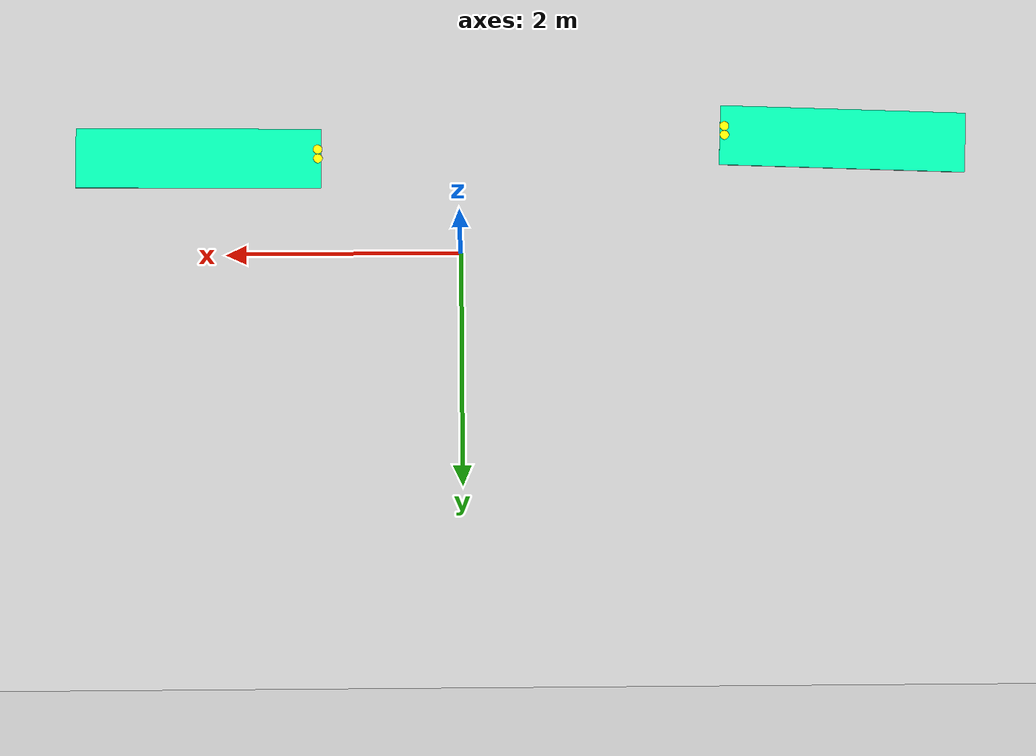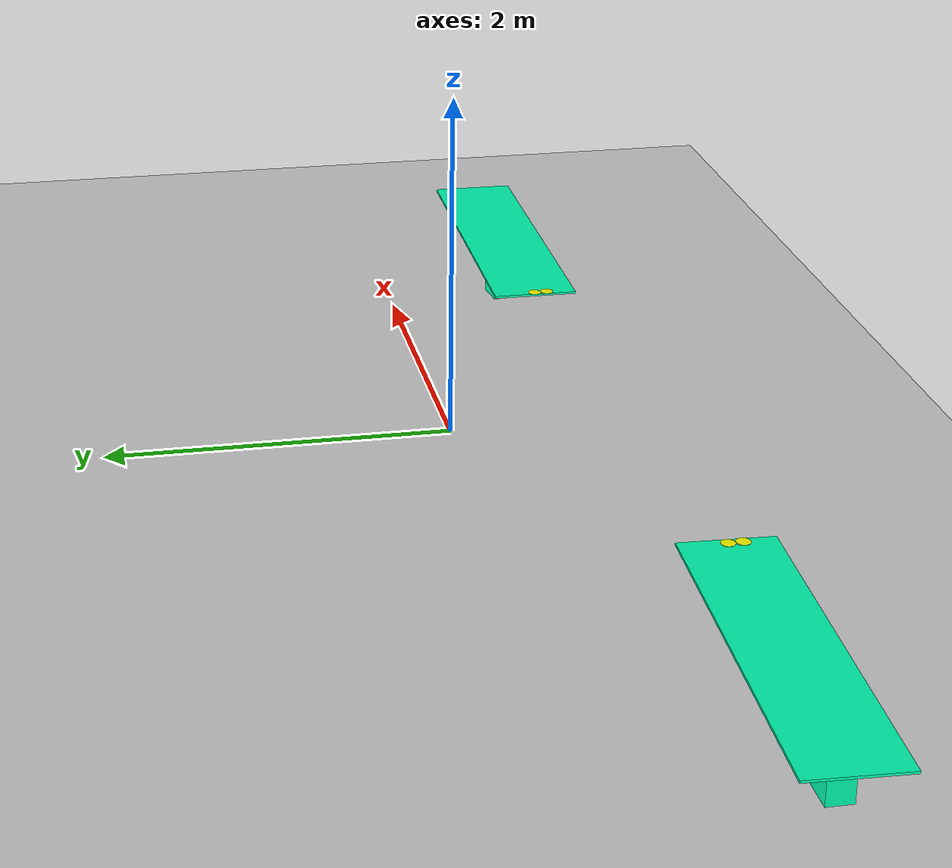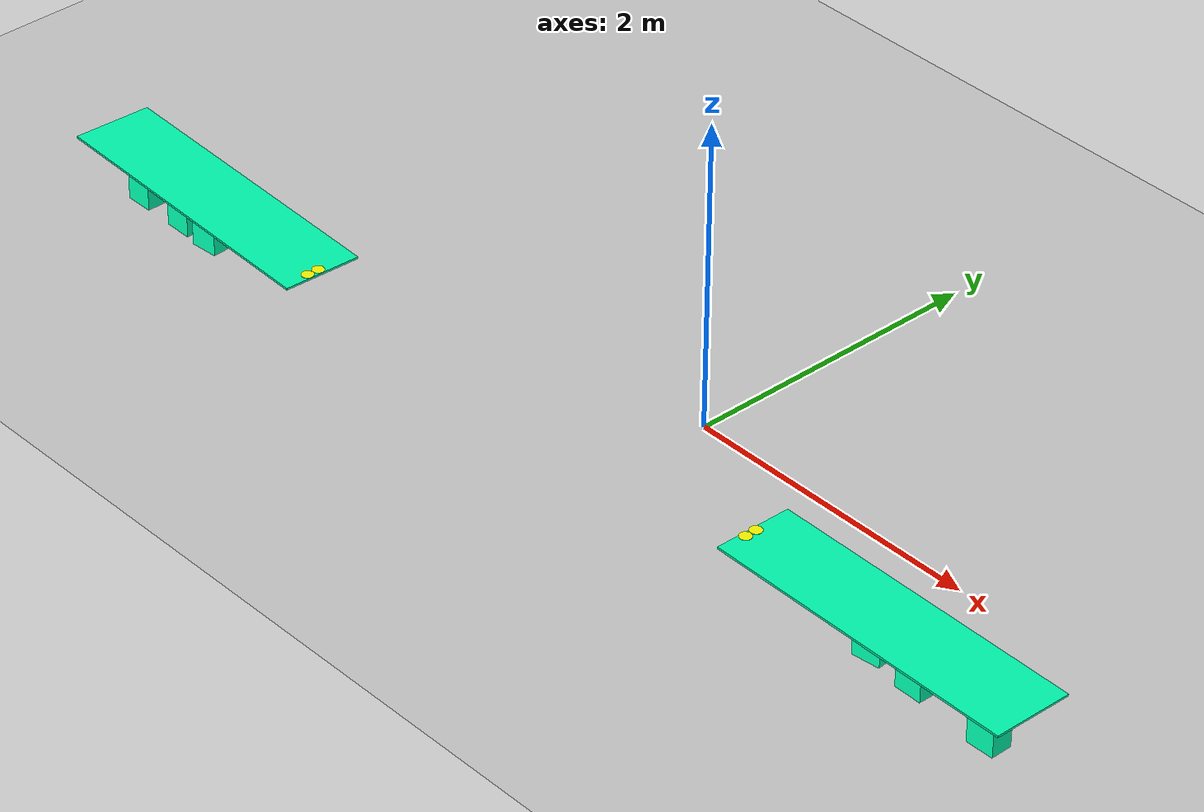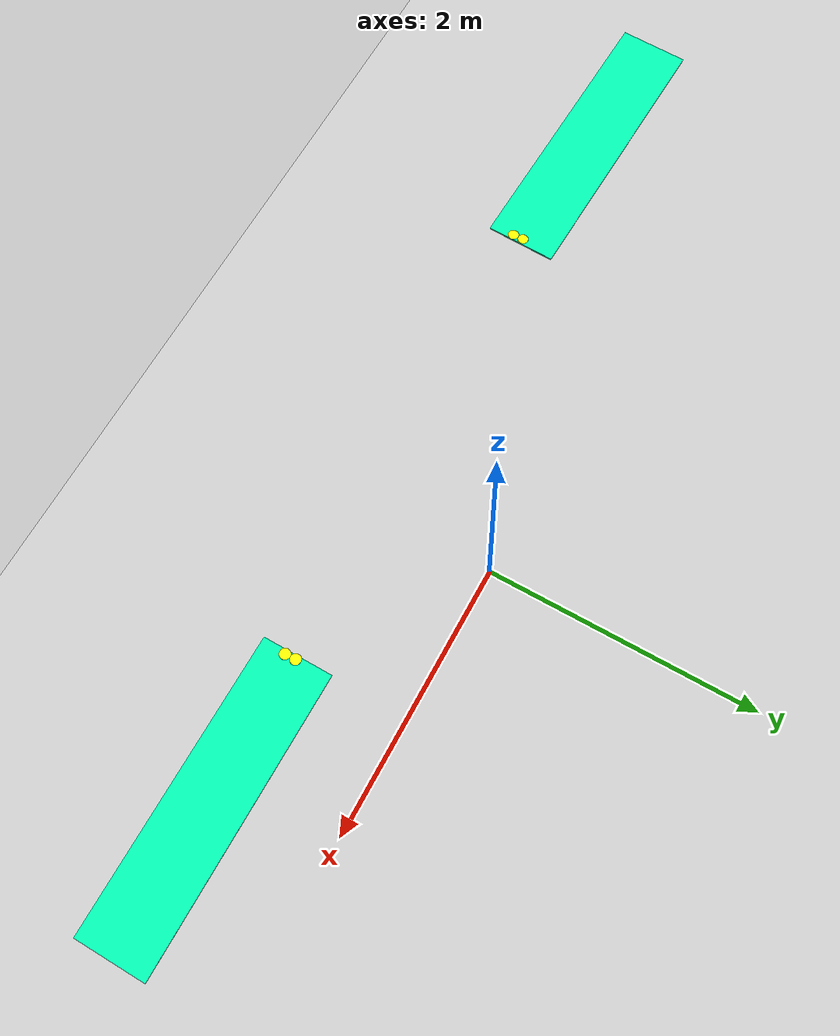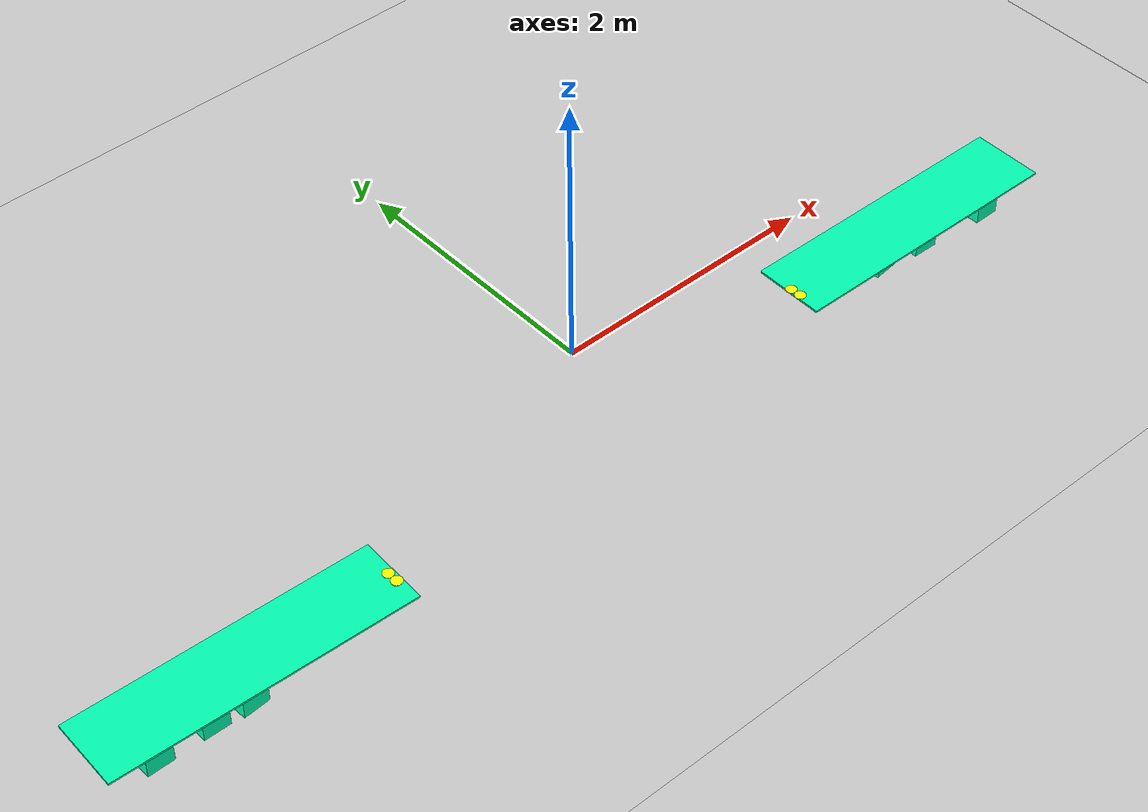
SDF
<sdf version="1.6">
 <world name="default">
  <light name="sun" type="directional">
   <pose>0 0 10 0 -0 0</pose>
   <diffuse>0.8 0.8 0.8 1</diffuse>
   <specular>0.1 0.1 0.1 1</specular>
   <attenuation>
    <range>1000</range>
    <constant>0.9</constant>
    <linear>0.01</linear>
    <quadratic>0.001</quadratic>
   </attenuation>
   <direction>-0.5 0.5 -1</direction>
  </light>
  <model name="ground_plane">
   <static>1</static>
   <link name="link">
    <collision name="collision">
     <geometry><plane><normal>0 0 1</normal><size>100 100</size></plane></geometry>
     <surface><friction><ode><mu>100</mu><mu2>50</mu2></ode></friction></surface>
    </collision>
    <visual name="visual">
     <cast_shadows>0</cast_shadows>
     <geometry><plane><normal>0 0 1</normal><size>100 100</size></plane></geometry>
     <material>
      <script><uri>file://media/materials/scripts/gazebo.material</uri><name>Gazebo/Grey</name></script>
     </material>
    </visual>
   </link>
  </model>
  <gravity>0 0 -9.8</gravity>
  <magnetic_field>6e-06 2.3e-05 -4.2e-05</magnetic_field>
  <atmosphere type="adiabatic"/>
  <physics name="default_physics" default="0" type="ode">
   <max_step_size>0.001</max_step_size>
   <real_time_factor>1</real_time_factor>
   <real_time_update_rate>1000</real_time_update_rate>
  </physics>
  <scene><ambient>0.4 0.4 0.4 1</ambient><background>0.7 0.7 0.7 1</background><shadows>1</shadows></scene>
  <spherical_coordinates>
   <surface_model>EARTH_WGS84</surface_model>
   <latitude_deg>0</latitude_deg>
   <longitude_deg>0</longitude_deg>
   <elevation>0</elevation>
   <heading_deg>0</heading_deg>
  </spherical_coordinates>
  <model name="coin">
   <link name="link">
    <pose>-0.752152 -0.656871 1.73249 0 -0 0</pose>
    <inertial>
     <mass>1.24018e-05</mass>
     <inertia>
      <ixx>-2.61911e-10</ixx>
      <ixy>0</ixy>
      <ixz>0</ixz>
      <iyy>-2.61911e-10</iyy>
      <iyz>0</iyz>
      <izz>8.9216e-09</izz>
     </inertia>
    </inertial>
    <visual name="visual">
     <geometry><cylinder><radius>0.0390587</radius><length>0.00202682</length></cylinder></geometry>
     <material>
      <script><name>Gazebo/Grey</name><uri>file://media/materials/scripts/gazebo.material</uri></script>
      <ambient>1 1 0 0</ambient>
      <diffuse>1 1 0 0</diffuse>
      <specular>1 1 0.01 0</specular>
      <emissive>1 1 0 0</emissive>
      <shader type="vertex"><normal_map>__default__</normal_map></shader>
     </material>
    </visual>
    <collision name="collision">
     <geometry><cylinder><radius>0.039059</radius><length>0.002027</length></cylinder></geometry>
     <surface>
      <friction>
       <ode><mu>1</mu><mu2>1</mu2><fdir1>0 0 0</fdir1><slip1>0</slip1><slip2>0</slip2></ode>
       <torsional>
        <coefficient>1</coefficient>
        <patch_radius>0</patch_radius>
        <surface_radius>0</surface_radius>
        <use_patch_radius>1</use_patch_radius>
        <ode><slip>0</slip></ode>
       </torsional>
      </friction>
      <bounce><restitution_coefficient>0</restitution_coefficient><threshold>1e+06</threshold></bounce>
      <contact>
       <collide_without_contact>0</collide_without_contact>
       <collide_without_contact_bitmask>1</collide_without_contact_bitmask>
       <collide_bitmask>1</collide_bitmask>
       <ode>
        <soft_cfm>0</soft_cfm>
        <soft_erp>0.2</soft_erp>
        <kp>1e+13</kp>
        <kd>1</kd>
        <max_vel>0.01</max_vel>
        <min_depth>0</min_depth>
       </ode>
       <bullet>
        <split_impulse>1</split_impulse>
        <split_impulse_penetration_threshold>-0.01</split_impulse_penetration_threshold>
        <soft_cfm>0</soft_cfm>
        <soft_erp>0.2</soft_erp>
        <kp>1e+13</kp>
        <kd>1</kd>
       </bullet>
      </contact>
     </surface>
    </collision>
   </link>
   <static>0</static>
   <pose>1.96427 -0.189458 -1.38894 -6.1e-05 -4.3e-05 -1.7e-05</pose>
  </model>
  <model name="coin_clone">
   <link name="link">
    <pose>-0.752152 -0.656871 1.73249 0 -0 0</pose>
    <inertial>
     <mass>1.24018e-05</mass>
     <inertia>
      <ixx>-2.61911e-10</ixx>
      <ixy>0</ixy>
      <ixz>0</ixz>
      <iyy>-2.61911e-10</iyy>
      <iyz>0</iyz>
      <izz>8.9216e-09</izz>
     </inertia>
    </inertial>
    <visual name="visual">
     <geometry><cylinder><radius>0.0390587</radius><length>0.00202682</length></cylinder></geometry>
     <material>
      <script><name>Gazebo/Grey</name><uri>file://media/materials/scripts/gazebo.material</uri></script>
      <ambient>1 1 0 0</ambient>
      <diffuse>1 1 0 0</diffuse>
      <specular>1 1 0.01 0</specular>
      <emissive>1 1 0 0</emissive>
      <shader type="vertex"><normal_map>__default__</normal_map></shader>
     </material>
    </visual>
    <collision name="collision">
     <geometry><cylinder><radius>0.039059</radius><length>0.002027</length></cylinder></geometry>
     <surface>
      <friction>
       <ode><mu>1</mu><mu2>1</mu2><fdir1>0 0 0</fdir1><slip1>0</slip1><slip2>0</slip2></ode>
       <torsional>
        <coefficient>1</coefficient>
        <patch_radius>0</patch_radius>
        <surface_radius>0</surface_radius>
        <use_patch_radius>1</use_patch_radius>
        <ode><slip>0</slip></ode>
       </torsional>
      </friction>
      <bounce><restitution_coefficient>0</restitution_coefficient><threshold>1e+06</threshold></bounce>
      <contact>
       <collide_without_contact>0</collide_without_contact>
       <collide_without_contact_bitmask>1</collide_without_contact_bitmask>
       <collide_bitmask>1</collide_bitmask>
       <ode>
        <soft_cfm>0</soft_cfm>
        <soft_erp>0.2</soft_erp>
        <kp>1e+13</kp>
        <kd>1</kd>
        <max_vel>0.01</max_vel>
        <min_depth>0</min_depth>
       </ode>
       <bullet>
        <split_impulse>1</split_impulse>
        <split_impulse_penetration_threshold>-0.01</split_impulse_penetration_threshold>
        <soft_cfm>0</soft_cfm>
        <soft_erp>0.2</soft_erp>
        <kp>1e+13</kp>
        <kd>1</kd>
       </bullet>
      </contact>
     </surface>
    </collision>
   </link>
   <static>0</static>
   <pose>1.96197 -0.111284 -1.38894 -3.8e-05 -2.8e-05 -1.4e-05</pose>
  </model>
  <model name="box_init_base_2_weight">
   <link name="link">
    <pose>0.033322 0.022861 0.129335 0 -0 0</pose>
    <inertial>
     <mass>5.63888</mass>
     <inertia>
      <ixx>0.174337</ixx>
      <ixy>0</ixy>
      <ixz>0</ixz>
      <iyy>0.192045</iyy>
      <iyz>0</iyz>
      <izz>0.023962</izz>
     </inertia>
    </inertial>
    <visual name="visual">
     <geometry><box><size>0.186419 0.138346 0.335251</size></box></geometry>
     <material>
      <script><name>Gazebo/Grey</name><uri>file://media/materials/scripts/gazebo.material</uri></script>
      <ambient>0 1 0.3 1</ambient>
      <diffuse>0 1 0.7 1</diffuse>
      <specular>0 1 0.01 1</specular>
      <emissive>0 1 0 1</emissive>
      <shader type="vertex"><normal_map>__default__</normal_map></shader>
     </material>
    </visual>
    <collision name="collision">
     <geometry><box><size>0.186419 0.138346 0.335251</size></box></geometry>
     <surface>
      <friction>
       <ode><mu>1</mu><mu2>1</mu2><fdir1>0 0 0</fdir1><slip1>0</slip1><slip2>0</slip2></ode>
       <torsional>
        <coefficient>1</coefficient>
        <patch_radius>0</patch_radius>
        <surface_radius>0</surface_radius>
        <use_patch_radius>1</use_patch_radius>
        <ode><slip>0</slip></ode>
       </torsional>
      </friction>
      <bounce><restitution_coefficient>0</restitution_coefficient><threshold>1e+06</threshold></bounce>
      <contact>
       <collide_without_contact>0</collide_without_contact>
       <collide_without_contact_bitmask>1</collide_without_contact_bitmask>
       <collide_bitmask>1</collide_bitmask>
       <ode>
        <soft_cfm>0</soft_cfm>
        <soft_erp>0.2</soft_erp>
        <kp>1e+13</kp>
        <kd>1</kd>
        <max_vel>0.01</max_vel>
        <min_depth>0</min_depth>
       </ode>
       <bullet>
        <split_impulse>1</split_impulse>
        <split_impulse_penetration_threshold>-0.01</split_impulse_penetration_threshold>
        <soft_cfm>0</soft_cfm>
        <soft_erp>0.2</soft_erp>
        <kp>1e+13</kp>
        <kd>1</kd>
       </bullet>
      </contact>
     </surface>
    </collision>
   </link>
   <static>0</static>
   <pose>2.05521 -0.764642 0.038291 -3e-06 -2e-06 0.114904</pose>
  </model>
  <model name="box_init_base_2_weight_clone">
   <link name="link">
    <pose>0.033322 0.022861 0.129335 0 -0 0</pose>
    <inertial>
     <mass>5.63888</mass>
     <inertia>
      <ixx>0.174337</ixx>
      <ixy>0</ixy>
      <ixz>0</ixz>
      <iyy>0.192045</iyy>
      <iyz>0</iyz>
      <izz>0.023962</izz>
     </inertia>
    </inertial>
    <visual name="visual">
     <geometry><box><size>0.186419 0.138346 0.335251</size></box></geometry>
     <material>
      <script><name>Gazebo/Grey</name><uri>file://media/materials/scripts/gazebo.material</uri></script>
      <ambient>0 1 0.3 1</ambient>
      <diffuse>0 1 0.7 1</diffuse>
      <specular>0 1 0.01 1</specular>
      <emissive>0 1 0 1</emissive>
      <shader type="vertex"><normal_map>__default__</normal_map></shader>
     </material>
    </visual>
    <collision name="collision">
     <geometry><box><size>0.186419 0.138346 0.335251</size></box></geometry>
     <surface>
      <friction>
       <ode><mu>1</mu><mu2>1</mu2><fdir1>0 0 0</fdir1><slip1>0</slip1><slip2>0</slip2></ode>
       <torsional>
        <coefficient>1</coefficient>
        <patch_radius>0</patch_radius>
        <surface_radius>0</surface_radius>
        <use_patch_radius>1</use_patch_radius>
        <ode><slip>0</slip></ode>
       </torsional>
      </friction>
      <bounce><restitution_coefficient>0</restitution_coefficient><threshold>1e+06</threshold></bounce>
      <contact>
       <collide_without_contact>0</collide_without_contact>
       <collide_without_contact_bitmask>1</collide_without_contact_bitmask>
       <collide_bitmask>1</collide_bitmask>
       <ode>
        <soft_cfm>0</soft_cfm>
        <soft_erp>0.2</soft_erp>
        <kp>1e+13</kp>
        <kd>1</kd>
        <max_vel>0.01</max_vel>
        <min_depth>0</min_depth>
       </ode>
       <bullet>
        <split_impulse>1</split_impulse>
        <split_impulse_penetration_threshold>-0.01</split_impulse_penetration_threshold>
        <soft_cfm>0</soft_cfm>
        <soft_erp>0.2</soft_erp>
        <kp>1e+13</kp>
        <kd>1</kd>
       </bullet>
      </contact>
     </surface>
    </collision>
   </link>
   <static>0</static>
   <pose>2.40391 -0.793136 0.03829 2e-05 -7e-06 -0.013028</pose>
  </model>
  <model name="box_init_base_2_weight_clone_0">
   <link name="link">
    <pose>0.033322 0.022861 0.129335 0 -0 0</pose>
    <inertial>
     <mass>5.63888</mass>
     <inertia>
      <ixx>0.174337</ixx>
      <ixy>0</ixy>
      <ixz>0</ixz>
      <iyy>0.192045</iyy>
      <iyz>0</iyz>
      <izz>0.023962</izz>
     </inertia>
    </inertial>
    <visual name="visual">
     <geometry><box><size>0.186419 0.138346 0.335251</size></box></geometry>
     <material>
      <script><name>Gazebo/Grey</name><uri>file://media/materials/scripts/gazebo.material</uri></script>
      <ambient>0 1 0.3 1</ambient>
      <diffuse>0 1 0.7 1</diffuse>
      <specular>0 1 0.01 1</specular>
      <emissive>0 1 0 1</emissive>
      <shader type="vertex"><normal_map>__default__</normal_map></shader>
     </material>
    </visual>
    <collision name="collision">
     <geometry><box><size>0.186419 0.138346 0.335251</size></box></geometry>
     <surface>
      <friction>
       <ode><mu>1</mu><mu2>1</mu2><fdir1>0 0 0</fdir1><slip1>0</slip1><slip2>0</slip2></ode>
       <torsional>
        <coefficient>1</coefficient>
        <patch_radius>0</patch_radius>
        <surface_radius>0</surface_radius>
        <use_patch_radius>1</use_patch_radius>
        <ode><slip>0</slip></ode>
       </torsional>
      </friction>
      <bounce><restitution_coefficient>0</restitution_coefficient><threshold>1e+06</threshold></bounce>
      <contact>
       <collide_without_contact>0</collide_without_contact>
       <collide_without_contact_bitmask>1</collide_without_contact_bitmask>
       <collide_bitmask>1</collide_bitmask>
       <ode>
        <soft_cfm>0</soft_cfm>
        <soft_erp>0.2</soft_erp>
        <kp>1e+13</kp>
        <kd>1</kd>
        <max_vel>0.01</max_vel>
        <min_depth>0</min_depth>
       </ode>
       <bullet>
        <split_impulse>1</split_impulse>
        <split_impulse_penetration_threshold>-0.01</split_impulse_penetration_threshold>
        <soft_cfm>0</soft_cfm>
        <soft_erp>0.2</soft_erp>
        <kp>1e+13</kp>
        <kd>1</kd>
       </bullet>
      </contact>
     </surface>
    </collision>
   </link>
   <static>0</static>
   <pose>2.96555 -0.836134 0.03829 2e-06 -6e-06 0.009809</pose>
  </model>
  <model name="box_init_surface_1">
   <link name="link">
    <pose>0.030718 0.14752 0.313267 0 -0 0</pose>
    <inertial>
     <mass>9.21638</mass>
     <inertia><ixx>0.070657</ixx><ixy>0</ixy><ixz>0</ixz><iyy>4.25812</iyy><iyz>0</iyz><izz>4.32792</izz></inertia>
    </inertial>
    <visual name="visual">
     <geometry><box><size>2.08452 0.51282 0.013219</size></box></geometry>
     <material>
      <script><name>Gazebo/Grey</name><uri>file://media/materials/scripts/gazebo.material</uri></script>
      <ambient>0 1 0.3 1</ambient>
      <diffuse>0 1 0.7 1</diffuse>
      <specular>0 1 0.01 1</specular>
      <emissive>0 1 0 1</emissive>
      <shader type="vertex"><normal_map>__default__</normal_map></shader>
     </material>
    </visual>
    <collision name="collision">
     <geometry><box><size>2.08452 0.51282 0.013219</size></box></geometry>
     <surface>
      <friction>
       <ode><mu>1</mu><mu2>1</mu2><fdir1>0 0 0</fdir1><slip1>0</slip1><slip2>0</slip2></ode>
       <torsional>
        <coefficient>1</coefficient>
        <patch_radius>0</patch_radius>
        <surface_radius>0</surface_radius>
        <use_patch_radius>1</use_patch_radius>
        <ode><slip>0</slip></ode>
       </torsional>
      </friction>
      <bounce><restitution_coefficient>0</restitution_coefficient><threshold>1e+06</threshold></bounce>
      <contact>
       <collide_without_contact>0</collide_without_contact>
       <collide_without_contact_bitmask>1</collide_without_contact_bitmask>
       <collide_bitmask>1</collide_bitmask>
       <ode>
        <soft_cfm>0</soft_cfm>
        <soft_erp>0.2</soft_erp>
        <kp>1e+13</kp>
        <kd>1</kd>
        <max_vel>0.01</max_vel>
        <min_depth>0</min_depth>
       </ode>
       <bullet>
        <split_impulse>1</split_impulse>
        <split_impulse_penetration_threshold>-0.01</split_impulse_penetration_threshold>
        <soft_cfm>0</soft_cfm>
        <soft_erp>0.2</soft_erp>
        <kp>1e+13</kp>
        <kd>1</kd>
       </bullet>
      </contact>
     </surface>
    </collision>
   </link>
   <static>0</static>
   <pose>2.19323 -0.924488 0.02268 -1.7e-05 -5e-06 -0.009739</pose>
  </model>
  <model name="box_init_base_2_weight_1">
   <link name="link">
    <pose>0.033322 0.022861 0.129335 0 -0 0</pose>
    <inertial>
     <mass>5.63888</mass>
     <inertia>
      <ixx>0.174337</ixx>
      <ixy>0</ixy>
      <ixz>0</ixz>
      <iyy>0.192045</iyy>
      <iyz>0</iyz>
      <izz>0.023962</izz>
     </inertia>
    </inertial>
    <visual name="visual">
     <geometry><box><size>0.186419 0.138346 0.335251</size></box></geometry>
     <material>
      <script><name>Gazebo/Grey</name><uri>file://media/materials/scripts/gazebo.material</uri></script>
      <ambient>0 1 0.3 1</ambient>
      <diffuse>0 1 0.7 1</diffuse>
      <specular>0 1 0.01 1</specular>
      <emissive>0 1 0 1</emissive>
      <shader type="vertex"><normal_map>__default__</normal_map></shader>
     </material>
    </visual>
    <collision name="collision">
     <geometry><box><size>0.186419 0.138346 0.335251</size></box></geometry>
     <surface>
      <friction>
       <ode><mu>1</mu><mu2>1</mu2><fdir1>0 0 0</fdir1><slip1>0</slip1><slip2>0</slip2></ode>
       <torsional>
        <coefficient>1</coefficient>
        <patch_radius>0</patch_radius>
        <surface_radius>0</surface_radius>
        <use_patch_radius>1</use_patch_radius>
        <ode><slip>0</slip></ode>
       </torsional>
      </friction>
      <bounce><restitution_coefficient>0</restitution_coefficient><threshold>1e+06</threshold></bounce>
      <contact>
       <collide_without_contact>0</collide_without_contact>
       <collide_without_contact_bitmask>1</collide_without_contact_bitmask>
       <collide_bitmask>1</collide_bitmask>
       <ode>
        <soft_cfm>0</soft_cfm>
        <soft_erp>0.2</soft_erp>
        <kp>1e+13</kp>
        <kd>1</kd>
        <max_vel>0.01</max_vel>
        <min_depth>0</min_depth>
       </ode>
       <bullet>
        <split_impulse>1</split_impulse>
        <split_impulse_penetration_threshold>-0.01</split_impulse_penetration_threshold>
        <soft_cfm>0</soft_cfm>
        <soft_erp>0.2</soft_erp>
        <kp>1e+13</kp>
        <kd>1</kd>
       </bullet>
      </contact>
     </surface>
    </collision>
   </link>
   <static>0</static>
   <pose>-3.29274 -0.950911 0.038291 -0 1e-06 0.070179</pose>
  </model>
  <model name="box_init_base_2_weight_1_clone">
   <link name="link">
    <pose>0.033322 0.022861 0.129335 0 -0 0</pose>
    <inertial>
     <mass>5.63888</mass>
     <inertia>
      <ixx>0.174337</ixx>
      <ixy>0</ixy>
      <ixz>0</ixz>
      <iyy>0.192045</iyy>
      <iyz>0</iyz>
      <izz>0.023962</izz>
     </inertia>
    </inertial>
    <visual name="visual">
     <geometry><box><size>0.186419 0.138346 0.335251</size></box></geometry>
     <material>
      <script><name>Gazebo/Grey</name><uri>file://media/materials/scripts/gazebo.material</uri></script>
      <ambient>0 1 0.3 1</ambient>
      <diffuse>0 1 0.7 1</diffuse>
      <specular>0 1 0.01 1</specular>
      <emissive>0 1 0 1</emissive>
      <shader type="vertex"><normal_map>__default__</normal_map></shader>
     </material>
    </visual>
    <collision name="collision">
     <geometry><box><size>0.186419 0.138346 0.335251</size></box></geometry>
     <surface>
      <friction>
       <ode><mu>1</mu><mu2>1</mu2><fdir1>0 0 0</fdir1><slip1>0</slip1><slip2>0</slip2></ode>
       <torsional>
        <coefficient>1</coefficient>
        <patch_radius>0</patch_radius>
        <surface_radius>0</surface_radius>
        <use_patch_radius>1</use_patch_radius>
        <ode><slip>0</slip></ode>
       </torsional>
      </friction>
      <bounce><restitution_coefficient>0</restitution_coefficient><threshold>1e+06</threshold></bounce>
      <contact>
       <collide_without_contact>0</collide_without_contact>
       <collide_without_contact_bitmask>1</collide_without_contact_bitmask>
       <collide_bitmask>1</collide_bitmask>
       <ode>
        <soft_cfm>0</soft_cfm>
        <soft_erp>0.2</soft_erp>
        <kp>1e+13</kp>
        <kd>1</kd>
        <max_vel>0.01</max_vel>
        <min_depth>0</min_depth>
       </ode>
       <bullet>
        <split_impulse>1</split_impulse>
        <split_impulse_penetration_threshold>-0.01</split_impulse_penetration_threshold>
        <soft_cfm>0</soft_cfm>
        <soft_erp>0.2</soft_erp>
        <kp>1e+13</kp>
        <kd>1</kd>
       </bullet>
      </contact>
     </surface>
    </collision>
   </link>
   <static>0</static>
   <pose>-3.55302 -0.934616 0.038262 -0 1e-06 -0.010245</pose>
  </model>
  <model name="box_init_base_2_weight_1_clone_0">
   <link name="link">
    <pose>0.033322 0.022861 0.129335 0 -0 0</pose>
    <inertial>
     <mass>5.63888</mass>
     <inertia>
      <ixx>0.174337</ixx>
      <ixy>0</ixy>
      <ixz>0</ixz>
      <iyy>0.192045</iyy>
      <iyz>0</iyz>
      <izz>0.023962</izz>
     </inertia>
    </inertial>
    <visual name="visual">
     <geometry><box><size>0.186419 0.138346 0.335251</size></box></geometry>
     <material>
      <script><name>Gazebo/Grey</name><uri>file://media/materials/scripts/gazebo.material</uri></script>
      <ambient>0 1 0.3 1</ambient>
      <diffuse>0 1 0.7 1</diffuse>
      <specular>0 1 0.01 1</specular>
      <emissive>0 1 0 1</emissive>
      <shader type="vertex"><normal_map>__default__</normal_map></shader>
     </material>
    </visual>
    <collision name="collision">
     <geometry><box><size>0.186419 0.138346 0.335251</size></box></geometry>
     <surface>
      <friction>
       <ode><mu>1</mu><mu2>1</mu2><fdir1>0 0 0</fdir1><slip1>0</slip1><slip2>0</slip2></ode>
       <torsional>
        <coefficient>1</coefficient>
        <patch_radius>0</patch_radius>
        <surface_radius>0</surface_radius>
        <use_patch_radius>1</use_patch_radius>
        <ode><slip>0</slip></ode>
       </torsional>
      </friction>
      <bounce><restitution_coefficient>0</restitution_coefficient><threshold>1e+06</threshold></bounce>
      <contact>
       <collide_without_contact>0</collide_without_contact>
       <collide_without_contact_bitmask>1</collide_without_contact_bitmask>
       <collide_bitmask>1</collide_bitmask>
       <ode>
        <soft_cfm>0</soft_cfm>
        <soft_erp>0.2</soft_erp>
        <kp>1e+13</kp>
        <kd>1</kd>
        <max_vel>0.01</max_vel>
        <min_depth>0</min_depth>
       </ode>
       <bullet>
        <split_impulse>1</split_impulse>
        <split_impulse_penetration_threshold>-0.01</split_impulse_penetration_threshold>
        <soft_cfm>0</soft_cfm>
        <soft_erp>0.2</soft_erp>
        <kp>1e+13</kp>
        <kd>1</kd>
       </bullet>
      </contact>
     </surface>
    </collision>
   </link>
   <static>0</static>
   <pose>-3.93347 -0.930827 0.038261 0 -0 0.00182</pose>
  </model>
  <model name="box_init_surface_1_clone">
   <link name="link">
    <pose>0.030718 0.14752 0.313267 0 -0 0</pose>
    <inertial>
     <mass>9.21638</mass>
     <inertia><ixx>0.070657</ixx><ixy>0</ixy><ixz>0</ixz><iyy>4.25812</iyy><iyz>0</iyz><izz>4.32792</izz></inertia>
    </inertial>
    <visual name="visual">
     <geometry><box><size>2.08452 0.51282 0.013219</size></box></geometry>
     <material>
      <script><name>Gazebo/Grey</name><uri>file://media/materials/scripts/gazebo.material</uri></script>
      <ambient>0 1 0.3 1</ambient>
      <diffuse>0 1 0.7 1</diffuse>
      <specular>0 1 0.01 1</specular>
      <emissive>0 1 0 1</emissive>
      <shader type="vertex"><normal_map>__default__</normal_map></shader>
     </material>
    </visual>
    <collision name="collision">
     <geometry><box><size>2.08452 0.51282 0.013219</size></box></geometry>
     <surface>
      <friction>
       <ode><mu>1</mu><mu2>1</mu2><fdir1>0 0 0</fdir1><slip1>0</slip1><slip2>0</slip2></ode>
       <torsional>
        <coefficient>1</coefficient>
        <patch_radius>0</patch_radius>
        <surface_radius>0</surface_radius>
        <use_patch_radius>1</use_patch_radius>
        <ode><slip>0</slip></ode>
       </torsional>
      </friction>
      <bounce><restitution_coefficient>0</restitution_coefficient><threshold>1e+06</threshold></bounce>
      <contact>
       <collide_without_contact>0</collide_without_contact>
       <collide_without_contact_bitmask>1</collide_without_contact_bitmask>
       <collide_bitmask>1</collide_bitmask>
       <ode>
        <soft_cfm>0</soft_cfm>
        <soft_erp>0.2</soft_erp>
        <kp>1e+13</kp>
        <kd>1</kd>
        <max_vel>0.01</max_vel>
        <min_depth>0</min_depth>
       </ode>
       <bullet>
        <split_impulse>1</split_impulse>
        <split_impulse_penetration_threshold>-0.01</split_impulse_penetration_threshold>
        <soft_cfm>0</soft_cfm>
        <soft_erp>0.2</soft_erp>
        <kp>1e+13</kp>
        <kd>1</kd>
       </bullet>
      </contact>
     </surface>
    </collision>
   </link>
   <static>0</static>
   <pose>-3.28197 -1.04912 0.028584 1e-06 1e-06 -0.039736</pose>
  </model>
  <model name="coin_clone_clone">
   <link name="link">
    <pose>-0.752152 -0.656871 1.73249 0 -0 0</pose>
    <inertial>
     <mass>1.24018e-05</mass>
     <inertia>
      <ixx>-2.61911e-10</ixx>
      <ixy>0</ixy>
      <ixz>0</ixz>
      <iyy>-2.61911e-10</iyy>
      <iyz>0</iyz>
      <izz>8.9216e-09</izz>
     </inertia>
    </inertial>
    <visual name="visual">
     <geometry><cylinder><radius>0.0390587</radius><length>0.00202682</length></cylinder></geometry>
     <material>
      <script><name>Gazebo/Grey</name><uri>file://media/materials/scripts/gazebo.material</uri></script>
      <ambient>1 1 0 0</ambient>
      <diffuse>1 1 0 0</diffuse>
      <specular>1 1 0.01 0</specular>
      <emissive>1 1 0 0</emissive>
      <shader type="vertex"><normal_map>__default__</normal_map></shader>
     </material>
    </visual>
    <collision name="collision">
     <geometry><cylinder><radius>0.039059</radius><length>0.002027</length></cylinder></geometry>
     <surface>
      <friction>
       <ode><mu>1</mu><mu2>1</mu2><fdir1>0 0 0</fdir1><slip1>0</slip1><slip2>0</slip2></ode>
       <torsional>
        <coefficient>1</coefficient>
        <patch_radius>0</patch_radius>
        <surface_radius>0</surface_radius>
        <use_patch_radius>1</use_patch_radius>
        <ode><slip>0</slip></ode>
       </torsional>
      </friction>
      <bounce><restitution_coefficient>0</restitution_coefficient><threshold>1e+06</threshold></bounce>
      <contact>
       <collide_without_contact>0</collide_without_contact>
       <collide_without_contact_bitmask>1</collide_without_contact_bitmask>
       <collide_bitmask>1</collide_bitmask>
       <ode>
        <soft_cfm>0</soft_cfm>
        <soft_erp>0.2</soft_erp>
        <kp>1e+13</kp>
        <kd>1</kd>
        <max_vel>0.01</max_vel>
        <min_depth>0</min_depth>
       </ode>
       <bullet>
        <split_impulse>1</split_impulse>
        <split_impulse_penetration_threshold>-0.01</split_impulse_penetration_threshold>
        <soft_cfm>0</soft_cfm>
        <soft_erp>0.2</soft_erp>
        <kp>1e+13</kp>
        <kd>1</kd>
       </bullet>
      </contact>
     </surface>
    </collision>
   </link>
   <static>0</static>
   <pose>-1.49289 -0.287088 -1.38339 -0.000188 0.000329 -2.1e-05</pose>
  </model>
  <model name="coin_clone_clone_0">
   <link name="link">
    <pose>-0.752152 -0.656871 1.73249 0 -0 0</pose>
    <inertial>
     <mass>1.24018e-05</mass>
     <inertia>
      <ixx>-2.61911e-10</ixx>
      <ixy>0</ixy>
      <ixz>0</ixz>
      <iyy>-2.61911e-10</iyy>
      <iyz>0</iyz>
      <izz>8.9216e-09</izz>
     </inertia>
    </inertial>
    <visual name="visual">
     <geometry><cylinder><radius>0.0390587</radius><length>0.00202682</length></cylinder></geometry>
     <material>
      <script><name>Gazebo/Grey</name><uri>file://media/materials/scripts/gazebo.material</uri></script>
      <ambient>1 1 0 0</ambient>
      <diffuse>1 1 0 0</diffuse>
      <specular>1 1 0.01 0</specular>
      <emissive>1 1 0 0</emissive>
      <shader type="vertex"><normal_map>__default__</normal_map></shader>
     </material>
    </visual>
    <collision name="collision">
     <geometry><cylinder><radius>0.039059</radius><length>0.002027</length></cylinder></geometry>
     <surface>
      <friction>
       <ode><mu>1</mu><mu2>1</mu2><fdir1>0 0 0</fdir1><slip1>0</slip1><slip2>0</slip2></ode>
       <torsional>
        <coefficient>1</coefficient>
        <patch_radius>0</patch_radius>
        <surface_radius>0</surface_radius>
        <use_patch_radius>1</use_patch_radius>
        <ode><slip>0</slip></ode>
       </torsional>
      </friction>
      <bounce><restitution_coefficient>0</restitution_coefficient><threshold>1e+06</threshold></bounce>
      <contact>
       <collide_without_contact>0</collide_without_contact>
       <collide_without_contact_bitmask>1</collide_without_contact_bitmask>
       <collide_bitmask>1</collide_bitmask>
       <ode>
        <soft_cfm>0</soft_cfm>
        <soft_erp>0.2</soft_erp>
        <kp>1e+13</kp>
        <kd>1</kd>
        <max_vel>0.01</max_vel>
        <min_depth>0</min_depth>
       </ode>
       <bullet>
        <split_impulse>1</split_impulse>
        <split_impulse_penetration_threshold>-0.01</split_impulse_penetration_threshold>
        <soft_cfm>0</soft_cfm>
        <soft_erp>0.2</soft_erp>
        <kp>1e+13</kp>
        <kd>1</kd>
       </bullet>
      </contact>
     </surface>
    </collision>
   </link>
   <static>0</static>
   <pose>-1.49192 -0.365495 -1.38342 -0.00035 0.000223 -2.5e-05</pose>
  </model>
 </world>
</sdf>
